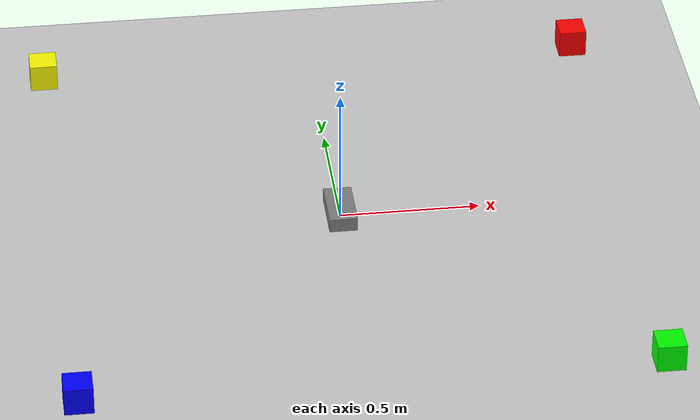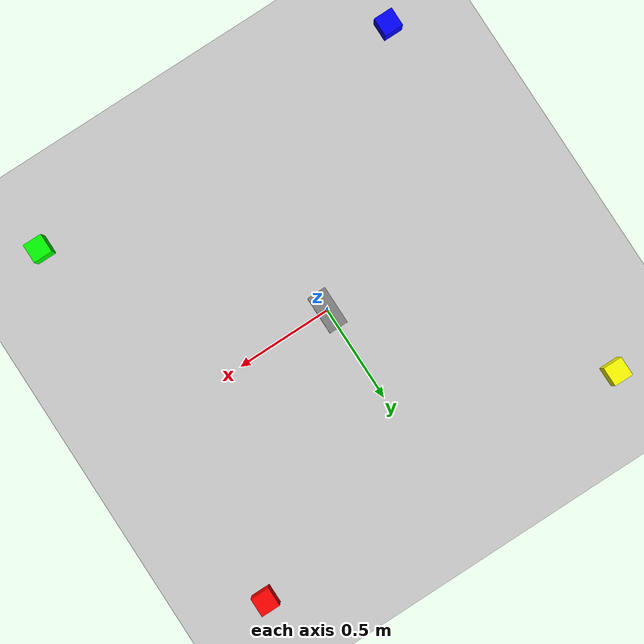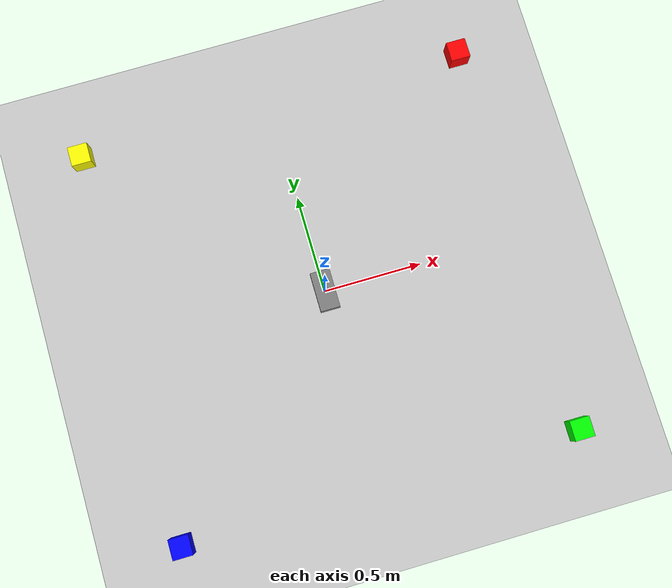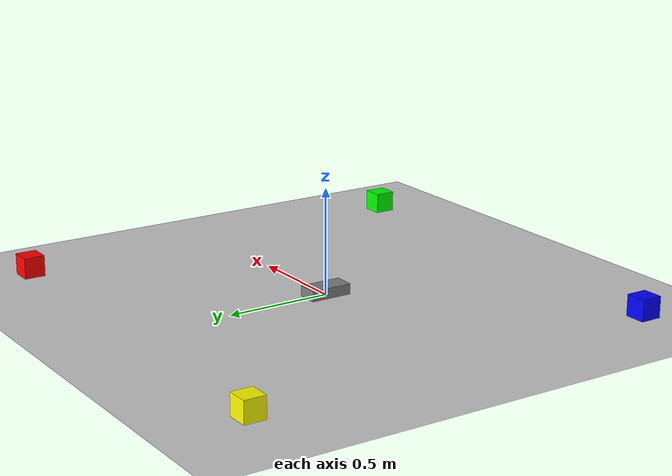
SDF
<?xml version="1.0" ?>
<sdf version="1.6">
  <world name="default">
    <include>
      <uri>model://sun</uri>
    </include>
    <include>
      <uri>model://ground_plane</uri>
    </include>

    <!-- Checkpoints -->
    <model name="C1">
      <static>true</static>
      <link name="link">
        <visual name="visual">
          <geometry><box><size>0.1 0.1 0.1</size></box></geometry>
          <material><ambient>1 0 0 1</ambient></material>
        </visual>
      </link>
      <pose>1 1 0.05 0 0 0</pose>
    </model>

    <model name="C2">
      <static>true</static>
      <link name="link">
        <visual name="visual">
          <geometry><box><size>0.1 0.1 0.1</size></box></geometry>
          <material><ambient>0 1 0 1</ambient></material>
        </visual>
      </link>
      <pose>1 -1 0.05 0 0 0</pose>
    </model>

    <model name="C3">
      <static>true</static>
      <link name="link">
        <visual name="visual">
          <geometry><box><size>0.1 0.1 0.1</size></box></geometry>
          <material><ambient>0 0 1 1</ambient></material>
        </visual>
      </link>
      <pose>-1 -1 0.05 0 0 0</pose>
    </model>

    <model name="C4">
      <static>true</static>
      <link name="link">
        <visual name="visual">
          <geometry><box><size>0.1 0.1 0.1</size></box></geometry>
          <material><ambient>1 1 0 1</ambient></material>
        </visual>
      </link>
      <pose>-1 1 0.05 0 0 0</pose>
    </model>

    <!-- Dock -->
    <model name="Dock">
      <static>true</static>
      <link name="link">
        <visual name="visual">
          <geometry><box><size>0.1 0.2 0.05</size></box></geometry>
          <material><ambient>0.5 0.5 0.5 1</ambient></material>
        </visual>
      </link>
      <pose>0 0 0.025 0 0 0</pose>
    </model>
  </world>
</sdf>
